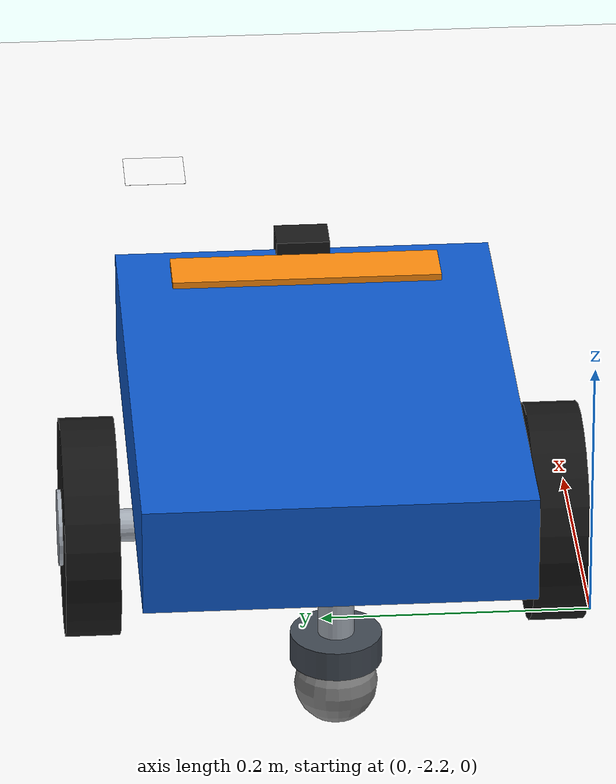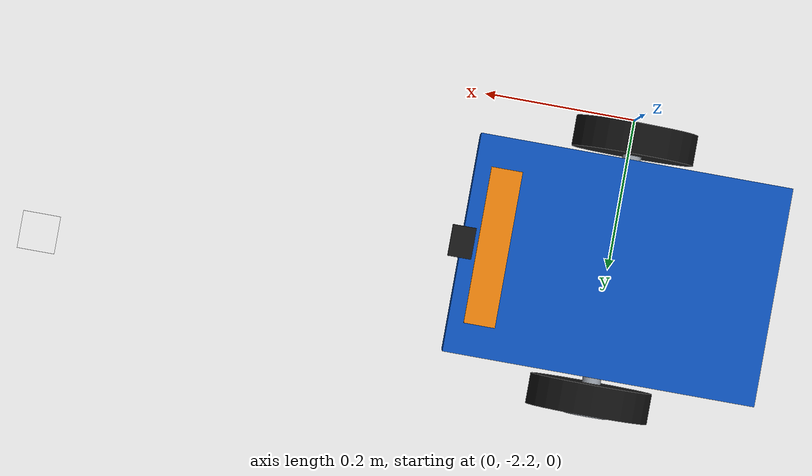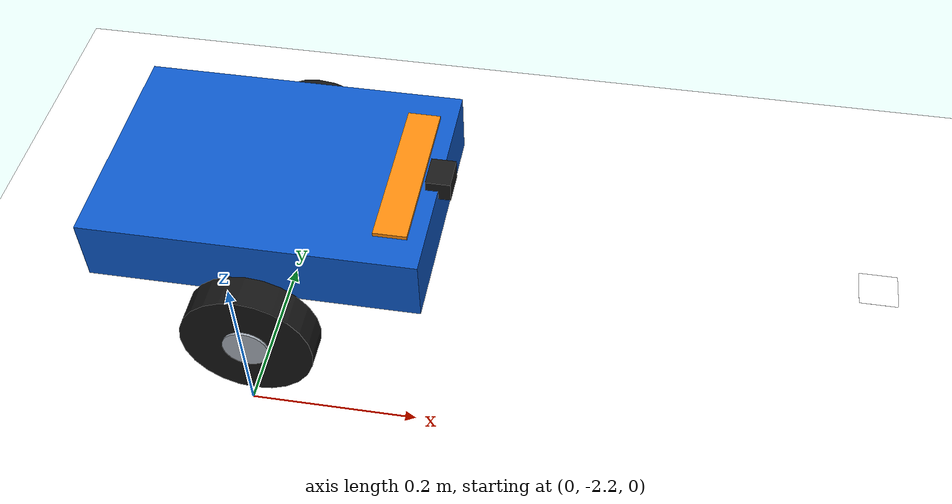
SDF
<?xml version='1.0' encoding='utf-8'?>
<sdf version="1.8">
  <world name="track_world">
    <physics name="physics" type="ignored">
      <max_step_size>0.02</max_step_size>
      <real_time_factor>1.0</real_time_factor>
    </physics>
    <plugin filename="libignition-gazebo-physics-system.so" name="ignition::gazebo::systems::Physics" />
    <plugin filename="libignition-gazebo-user-commands-system.so" name="ignition::gazebo::systems::UserCommands" />
    <plugin filename="libignition-gazebo-scene-broadcaster-system.so" name="ignition::gazebo::systems::SceneBroadcaster" />
    <scene>
      <ambient>0.8 0.8 0.8 1</ambient>
      <background>0.6 0.7 0.8 1</background>
      <shadows>false</shadows>
    </scene>
    <light name="sun" type="directional">
      <pose>0 0 10 0 0 0</pose>
      <diffuse>0.8 0.8 0.8 1</diffuse>
      <specular>0.1 0.1 0.1 1</specular>
      <direction>0 0 -1</direction>
      <cast_shadows>false</cast_shadows>
    </light>
    <model name="track_floor">
      <static>true</static>
      <link name="floor_link">
        <collision name="floor_collision">
          <geometry>
            <plane>
              <normal>0 0 1</normal>
              <size>6 6</size>
            </plane>
          </geometry>
        </collision>
        <visual name="floor_visual">
          <geometry>
            <plane>
              <normal>0 0 1</normal>
              <size>6 6</size>
            </plane>
          </geometry>
          <material>
            <ambient>1 1 1 1</ambient>
            <diffuse>1 1 1 1</diffuse>
            <specular>0 0 0 1</specular>
            <pbr>
              <metal>
                <albedo_map>../assets/track/Track_v1.png</albedo_map>
                <metalness>0</metalness>
                <roughness>1</roughness>
              </metal>
            </pbr>
          </material>
        </visual>
      </link>
    </model>
    <plugin name="ignition::gazebo::systems::Sensors" filename="libignition-gazebo-sensors-system.so">
      <render_engine>ogre2</render_engine>
    </plugin>
    <model name="amr">
      <pose>0 -2 0.005 0 0 0</pose>
      <static>false</static>
      <link name="base_link">
        <pose>0 0 0.16 0 0 0</pose>
        <inertial>
          <mass>4</mass>
          <inertia>
            <ixx>0.028266666666666673</ixx>
            <iyy>0.05546666666666667</iyy>
            <izz>0.07946666666666669</izz>
            <ixy>0</ixy>
            <ixz>0</ixz>
            <iyz>0</iyz>
          </inertia>
        </inertial>
        <visual name="chassis_visual">
          <pose>0 0 0 0 0 0</pose>
          <geometry>
            <box>
              <size>0.40 0.28 0.08</size>
            </box>
          </geometry>
          <material>
            <ambient>0.05 0.35 0.8 1</ambient>
            <diffuse>0.05 0.35 0.8 1</diffuse>
          </material>
        </visual>
        <collision name="chassis_collision">
          <pose>0 0 0 0 0 0</pose>
          <geometry>
            <box>
              <size>0.40 0.28 0.08</size>
            </box>
          </geometry>
          <surface>
            <friction>
              <ode>
                <mu>1.0</mu>
                <mu2>1.0</mu2>
              </ode>
            </friction>
          </surface>
        </collision>
        <visual name="front_mark_visual">
          <pose>0.16 0 0.043 0 0 0</pose>
          <geometry>
            <box>
              <size>0.04 0.20 0.005</size>
            </box>
          </geometry>
          <material>
            <ambient>1 0.55 0.05 1</ambient>
            <diffuse>1 0.55 0.05 1</diffuse>
          </material>
        </visual>
        <visual name="sensor_strip_visual">
          <pose>0.17 0 -0.049 0 0 0</pose>
          <geometry>
            <box>
              <size>0.025 0.11 0.012</size>
            </box>
          </geometry>
          <material>
            <ambient>0.1 0.1 0.1 1</ambient>
            <diffuse>0.1 0.1 0.1 1</diffuse>
          </material>
        </visual>
        <sensor name="line_0" type="camera">
          <pose>0.17 0.04 -0.06 0 1.5707963267948966 0</pose>
          <always_on>true</always_on>
          <update_rate>15</update_rate>
          <topic>/amr/line_0/image</topic>
          <camera>
            <horizontal_fov>0.1</horizontal_fov>
            <image>
              <width>16</width>
              <height>16</height>
              <format>R8G8B8</format>
            </image>
            <clip>
              <near>0.005</near>
              <far>2</far>
            </clip>
          </camera>
        </sensor>
        <visual name="line_housing_0_visual">
          <pose>0.17 0.04 -0.057 0 0 0</pose>
          <geometry>
            <box>
              <size>0.008 0.008 0.004</size>
            </box>
          </geometry>
          <material>
            <ambient>0.9 0.1 0.1 1</ambient>
            <diffuse>0.9 0.1 0.1 1</diffuse>
          </material>
        </visual>
        <sensor name="line_1" type="camera">
          <pose>0.17 0.02 -0.06 0 1.5707963267948966 0</pose>
          <always_on>true</always_on>
          <update_rate>15</update_rate>
          <topic>/amr/line_1/image</topic>
          <camera>
            <horizontal_fov>0.1</horizontal_fov>
            <image>
              <width>16</width>
              <height>16</height>
              <format>R8G8B8</format>
            </image>
            <clip>
              <near>0.005</near>
              <far>2</far>
            </clip>
          </camera>
        </sensor>
        <visual name="line_housing_1_visual">
          <pose>0.17 0.02 -0.057 0 0 0</pose>
          <geometry>
            <box>
              <size>0.008 0.008 0.004</size>
            </box>
          </geometry>
          <material>
            <ambient>0.9 0.1 0.1 1</ambient>
            <diffuse>0.9 0.1 0.1 1</diffuse>
          </material>
        </visual>
        <sensor name="line_2" type="camera">
          <pose>0.17 0 -0.06 0 1.5707963267948966 0</pose>
          <always_on>true</always_on>
          <update_rate>15</update_rate>
          <topic>/amr/line_2/image</topic>
          <camera>
            <horizontal_fov>0.1</horizontal_fov>
            <image>
              <width>16</width>
              <height>16</height>
              <format>R8G8B8</format>
            </image>
            <clip>
              <near>0.005</near>
              <far>2</far>
            </clip>
          </camera>
        </sensor>
        <visual name="line_housing_2_visual">
          <pose>0.17 0 -0.057 0 0 0</pose>
          <geometry>
            <box>
              <size>0.008 0.008 0.004</size>
            </box>
          </geometry>
          <material>
            <ambient>0.9 0.1 0.1 1</ambient>
            <diffuse>0.9 0.1 0.1 1</diffuse>
          </material>
        </visual>
        <sensor name="line_3" type="camera">
          <pose>0.17 -0.02 -0.06 0 1.5707963267948966 0</pose>
          <always_on>true</always_on>
          <update_rate>15</update_rate>
          <topic>/amr/line_3/image</topic>
          <camera>
            <horizontal_fov>0.1</horizontal_fov>
            <image>
              <width>16</width>
              <height>16</height>
              <format>R8G8B8</format>
            </image>
            <clip>
              <near>0.005</near>
              <far>2</far>
            </clip>
          </camera>
        </sensor>
        <visual name="line_housing_3_visual">
          <pose>0.17 -0.02 -0.057 0 0 0</pose>
          <geometry>
            <box>
              <size>0.008 0.008 0.004</size>
            </box>
          </geometry>
          <material>
            <ambient>0.9 0.1 0.1 1</ambient>
            <diffuse>0.9 0.1 0.1 1</diffuse>
          </material>
        </visual>
        <sensor name="line_4" type="camera">
          <pose>0.17 -0.04 -0.06 0 1.5707963267948966 0</pose>
          <always_on>true</always_on>
          <update_rate>15</update_rate>
          <topic>/amr/line_4/image</topic>
          <camera>
            <horizontal_fov>0.1</horizontal_fov>
            <image>
              <width>16</width>
              <height>16</height>
              <format>R8G8B8</format>
            </image>
            <clip>
              <near>0.005</near>
              <far>2</far>
            </clip>
          </camera>
        </sensor>
        <visual name="line_housing_4_visual">
          <pose>0.17 -0.04 -0.057 0 0 0</pose>
          <geometry>
            <box>
              <size>0.008 0.008 0.004</size>
            </box>
          </geometry>
          <material>
            <ambient>0.9 0.1 0.1 1</ambient>
            <diffuse>0.9 0.1 0.1 1</diffuse>
          </material>
        </visual>
        <sensor name="qr" type="camera">
          <pose>0 0 -0.06 0 1.5707963267948966 0</pose>
          <always_on>true</always_on>
          <update_rate>5</update_rate>
          <topic>/amr/qr/image</topic>
          <camera>
            <horizontal_fov>1.8</horizontal_fov>
            <image>
              <width>640</width>
              <height>480</height>
              <format>R8G8B8</format>
            </image>
            <clip>
              <near>0.005</near>
              <far>2</far>
            </clip>
          </camera>
        </sensor>
        <visual name="qr_housing_visual">
          <pose>0 0 -0.049 0 0 0</pose>
          <geometry>
            <box>
              <size>0.025 0.025 0.012</size>
            </box>
          </geometry>
          <material>
            <ambient>0.1 0.1 0.1 1</ambient>
            <diffuse>0.1 0.1 0.1 1</diffuse>
          </material>
        </visual>
        <sensor name="front" type="camera">
          <pose>0.21 0 0.04 0 0 0</pose>
          <always_on>true</always_on>
          <update_rate>5</update_rate>
          <topic>/amr/front/image</topic>
          <camera>
            <horizontal_fov>1.2</horizontal_fov>
            <image>
              <width>320</width>
              <height>240</height>
              <format>R8G8B8</format>
            </image>
            <clip>
              <near>0.005</near>
              <far>10</far>
            </clip>
          </camera>
        </sensor>
        <visual name="front_camera_housing_visual">
          <pose>0.20 0 0.04 0 0 0</pose>
          <geometry>
            <box>
              <size>0.03 0.04 0.025</size>
            </box>
          </geometry>
          <material>
            <ambient>0.1 0.1 0.1 1</ambient>
            <diffuse>0.1 0.1 0.1 1</diffuse>
          </material>
        </visual>
        <visual name="left_motor_mount_visual">
          <pose>0 0.122 -0.0575 0 0 0</pose>
          <geometry>
            <box>
              <size>0.06 0.026 0.055</size>
            </box>
          </geometry>
          <material>
            <ambient>0.22 0.25 0.28 1</ambient>
            <diffuse>0.22 0.25 0.28 1</diffuse>
          </material>
        </visual>
        <visual name="left_axle_visual">
          <pose>0 0.145 -0.08 1.5707963267948966 0 0</pose>
          <geometry>
            <cylinder>
              <radius>0.012</radius>
              <length>0.05</length>
            </cylinder>
          </geometry>
          <material>
            <ambient>0.65 0.68 0.72 1</ambient>
            <diffuse>0.65 0.68 0.72 1</diffuse>
          </material>
        </visual>
        <visual name="right_motor_mount_visual">
          <pose>0 -0.122 -0.0575 0 0 0</pose>
          <geometry>
            <box>
              <size>0.06 0.026 0.055</size>
            </box>
          </geometry>
          <material>
            <ambient>0.22 0.25 0.28 1</ambient>
            <diffuse>0.22 0.25 0.28 1</diffuse>
          </material>
        </visual>
        <visual name="right_axle_visual">
          <pose>0 -0.145 -0.08 1.5707963267948966 0 0</pose>
          <geometry>
            <cylinder>
              <radius>0.012</radius>
              <length>0.05</length>
            </cylinder>
          </geometry>
          <material>
            <ambient>0.65 0.68 0.72 1</ambient>
            <diffuse>0.65 0.68 0.72 1</diffuse>
          </material>
        </visual>
        <visual name="front_support_plate_visual">
          <pose>0.12 0 -0.04 0 0 0</pose>
          <geometry>
            <box>
              <size>0.065 0.065 0.008</size>
            </box>
          </geometry>
          <material>
            <ambient>0.25 0.28 0.32 1</ambient>
            <diffuse>0.25 0.28 0.32 1</diffuse>
          </material>
        </visual>
        <visual name="front_support_stem_visual">
          <pose>0.12 0 -0.066 0 0 0</pose>
          <geometry>
            <cylinder>
              <radius>0.013</radius>
              <length>0.052</length>
            </cylinder>
          </geometry>
          <material>
            <ambient>0.65 0.68 0.72 1</ambient>
            <diffuse>0.65 0.68 0.72 1</diffuse>
          </material>
        </visual>
        <visual name="front_support_housing_visual">
          <pose>0.12 0 -0.10 0 0 0</pose>
          <geometry>
            <cylinder>
              <radius>0.033</radius>
              <length>0.022</length>
            </cylinder>
          </geometry>
          <material>
            <ambient>0.25 0.28 0.32 1</ambient>
            <diffuse>0.25 0.28 0.32 1</diffuse>
          </material>
        </visual>
        <visual name="rear_support_plate_visual">
          <pose>-0.15 0 -0.04 0 0 0</pose>
          <geometry>
            <box>
              <size>0.065 0.065 0.008</size>
            </box>
          </geometry>
          <material>
            <ambient>0.25 0.28 0.32 1</ambient>
            <diffuse>0.25 0.28 0.32 1</diffuse>
          </material>
        </visual>
        <visual name="rear_support_stem_visual">
          <pose>-0.15 0 -0.066 0 0 0</pose>
          <geometry>
            <cylinder>
              <radius>0.013</radius>
              <length>0.052</length>
            </cylinder>
          </geometry>
          <material>
            <ambient>0.65 0.68 0.72 1</ambient>
            <diffuse>0.65 0.68 0.72 1</diffuse>
          </material>
        </visual>
        <visual name="rear_support_housing_visual">
          <pose>-0.15 0 -0.10 0 0 0</pose>
          <geometry>
            <cylinder>
              <radius>0.033</radius>
              <length>0.022</length>
            </cylinder>
          </geometry>
          <material>
            <ambient>0.25 0.28 0.32 1</ambient>
            <diffuse>0.25 0.28 0.32 1</diffuse>
          </material>
        </visual>
      </link>
      <link name="left_wheel">
        <pose>0 0.17 0.08 0 0 0</pose>
        <inertial>
          <mass>0.3</mass>
          <inertia>
            <ixx>0.0005200000000000001</ixx>
            <iyy>0.00096</iyy>
            <izz>0.0005200000000000001</izz>
            <ixy>0</ixy>
            <ixz>0</ixz>
            <iyz>0</iyz>
          </inertia>
        </inertial>
        <visual name="left_wheel_visual">
          <pose>0 0 0 1.5707963267948966 0 0</pose>
          <geometry>
            <cylinder>
              <radius>0.08</radius>
              <length>0.04</length>
            </cylinder>
          </geometry>
          <material>
            <ambient>0.08 0.08 0.08 1</ambient>
            <diffuse>0.08 0.08 0.08 1</diffuse>
          </material>
        </visual>
        <collision name="left_wheel_collision">
          <pose>0 0 0 1.5707963267948966 0 0</pose>
          <geometry>
            <cylinder>
              <radius>0.08</radius>
              <length>0.04</length>
            </cylinder>
          </geometry>
          <surface>
            <friction>
              <ode>
                <mu>1.0</mu>
                <mu2>1.0</mu2>
              </ode>
            </friction>
          </surface>
        </collision>
        <visual name="left_hub_visual">
          <pose>0 0.021 0 1.5707963267948966 0 0</pose>
          <geometry>
            <cylinder>
              <radius>0.028</radius>
              <length>0.004</length>
            </cylinder>
          </geometry>
          <material>
            <ambient>0.65 0.68 0.72 1</ambient>
            <diffuse>0.65 0.68 0.72 1</diffuse>
          </material>
        </visual>
      </link>
      <joint name="left_wheel_joint" type="revolute">
        <parent>base_link</parent>
        <child>left_wheel</child>
        <axis>
          <xyz>0 1 0</xyz>
          <limit>
            <lower>-1e+16</lower>
            <upper>1e+16</upper>
            <effort>10</effort>
            <velocity>20</velocity>
          </limit>
        </axis>
      </joint>
      <link name="right_wheel">
        <pose>0 -0.17 0.08 0 0 0</pose>
        <inertial>
          <mass>0.3</mass>
          <inertia>
            <ixx>0.0005200000000000001</ixx>
            <iyy>0.00096</iyy>
            <izz>0.0005200000000000001</izz>
            <ixy>0</ixy>
            <ixz>0</ixz>
            <iyz>0</iyz>
          </inertia>
        </inertial>
        <visual name="right_wheel_visual">
          <pose>0 0 0 1.5707963267948966 0 0</pose>
          <geometry>
            <cylinder>
              <radius>0.08</radius>
              <length>0.04</length>
            </cylinder>
          </geometry>
          <material>
            <ambient>0.08 0.08 0.08 1</ambient>
            <diffuse>0.08 0.08 0.08 1</diffuse>
          </material>
        </visual>
        <collision name="right_wheel_collision">
          <pose>0 0 0 1.5707963267948966 0 0</pose>
          <geometry>
            <cylinder>
              <radius>0.08</radius>
              <length>0.04</length>
            </cylinder>
          </geometry>
          <surface>
            <friction>
              <ode>
                <mu>1.0</mu>
                <mu2>1.0</mu2>
              </ode>
            </friction>
          </surface>
        </collision>
        <visual name="right_hub_visual">
          <pose>0 -0.021 0 1.5707963267948966 0 0</pose>
          <geometry>
            <cylinder>
              <radius>0.028</radius>
              <length>0.004</length>
            </cylinder>
          </geometry>
          <material>
            <ambient>0.65 0.68 0.72 1</ambient>
            <diffuse>0.65 0.68 0.72 1</diffuse>
          </material>
        </visual>
      </link>
      <joint name="right_wheel_joint" type="revolute">
        <parent>base_link</parent>
        <child>right_wheel</child>
        <axis>
          <xyz>0 1 0</xyz>
          <limit>
            <lower>-1e+16</lower>
            <upper>1e+16</upper>
            <effort>10</effort>
            <velocity>20</velocity>
          </limit>
        </axis>
      </joint>
      <link name="front_support">
        <pose>0.12 0 0.03 0 0 0</pose>
        <inertial>
          <mass>0.1</mass>
          <inertia>
            <ixx>3.6e-05</ixx>
            <iyy>3.6e-05</iyy>
            <izz>3.6e-05</izz>
            <ixy>0</ixy>
            <ixz>0</ixz>
            <iyz>0</iyz>
          </inertia>
        </inertial>
        <visual name="front_support_visual">
          <pose>0 0 0 0 0 0</pose>
          <geometry>
            <sphere>
              <radius>0.03</radius>
            </sphere>
          </geometry>
          <material>
            <ambient>0.5 0.5 0.5 1</ambient>
            <diffuse>0.5 0.5 0.5 1</diffuse>
          </material>
        </visual>
        <collision name="front_support_collision">
          <pose>0 0 0 0 0 0</pose>
          <geometry>
            <sphere>
              <radius>0.03</radius>
            </sphere>
          </geometry>
          <surface>
            <friction>
              <ode>
                <mu>0.001</mu>
                <mu2>0.001</mu2>
              </ode>
            </friction>
          </surface>
        </collision>
      </link>
      <joint name="front_support_joint" type="fixed">
        <parent>base_link</parent>
        <child>front_support</child>
      </joint>
      <link name="rear_support">
        <pose>-0.15 0 0.03 0 0 0</pose>
        <inertial>
          <mass>0.1</mass>
          <inertia>
            <ixx>3.6e-05</ixx>
            <iyy>3.6e-05</iyy>
            <izz>3.6e-05</izz>
            <ixy>0</ixy>
            <ixz>0</ixz>
            <iyz>0</iyz>
          </inertia>
        </inertial>
        <visual name="rear_support_visual">
          <pose>0 0 0 0 0 0</pose>
          <geometry>
            <sphere>
              <radius>0.03</radius>
            </sphere>
          </geometry>
          <material>
            <ambient>0.5 0.5 0.5 1</ambient>
            <diffuse>0.5 0.5 0.5 1</diffuse>
          </material>
        </visual>
        <collision name="rear_support_collision">
          <pose>0 0 0 0 0 0</pose>
          <geometry>
            <sphere>
              <radius>0.03</radius>
            </sphere>
          </geometry>
          <surface>
            <friction>
              <ode>
                <mu>0.001</mu>
                <mu2>0.001</mu2>
              </ode>
            </friction>
          </surface>
        </collision>
      </link>
      <joint name="rear_support_joint" type="fixed">
        <parent>base_link</parent>
        <child>rear_support</child>
      </joint>
      <plugin filename="libignition-gazebo-diff-drive-system.so" name="ignition::gazebo::systems::DiffDrive">
        <left_joint>left_wheel_joint</left_joint>
        <right_joint>right_wheel_joint</right_joint>
        <wheel_separation>0.34</wheel_separation>
        <wheel_radius>0.08</wheel_radius>
        <topic>/amr/cmd_vel</topic>
        <odom_topic>/amr/odometry</odom_topic>
        <odom_publish_frequency>30</odom_publish_frequency>
      </plugin>
    </model>
    <model name="qr_station_a">
      <static>true</static>
      <pose>0.75 -1.915 0.001 0 0 0</pose>
      <link name="marker">
        <visual name="qr_visual">
          <geometry>
            <plane>
              <normal>0 0 1</normal>
              <size>0.05 0.05</size>
            </plane>
          </geometry>
          <material>
            <ambient>1 1 1 1</ambient>
            <diffuse>1 1 1 1</diffuse>
            <specular>0 0 0 1</specular>
            <pbr>
              <metal>
                <albedo_map>../assets/checkpoints/Station_A.png</albedo_map>
                <metalness>0</metalness>
                <roughness>1</roughness>
              </metal>
            </pbr>
          </material>
        </visual>
      </link>
    </model>
  </world>
</sdf>
